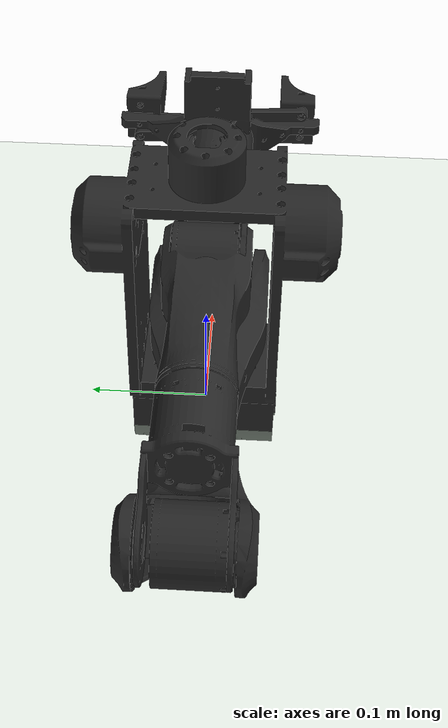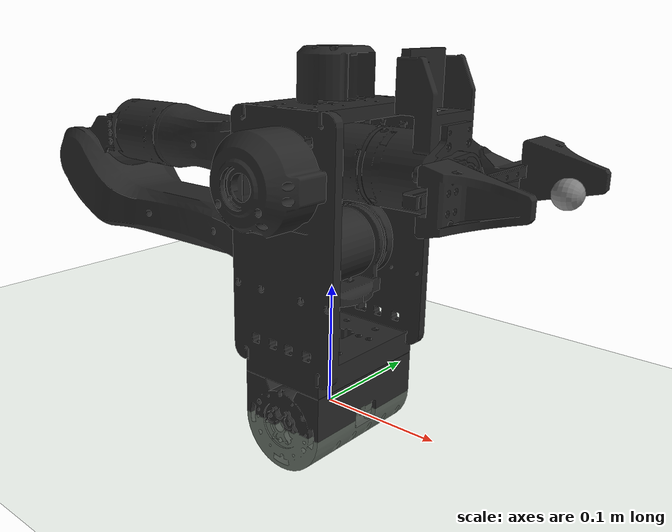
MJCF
<?xml version="1.0" encoding="utf-8"?>
<mujoco model="alicia_m_v1_2_follower">
  <compiler angle="radian" meshdir="../../meshes/Alicia_M_v1_2/follower/"/>
  <asset>
    <mesh name="base_link" file="base_link.STL" content_type="model/stl"/>
    <mesh name="link1" file="Link1.STL" content_type="model/stl"/>
    <mesh name="link2" file="Link2.STL" content_type="model/stl"/>
    <mesh name="link3" file="Link3.STL" content_type="model/stl"/>
    <mesh name="link4" file="Link4.STL" content_type="model/stl"/>
    <mesh name="link5" file="Link5.STL" content_type="model/stl"/>
    <mesh name="link6" file="Link6.STL" content_type="model/stl"/>
    <mesh name="grasp_base" file="grasp_base.STL"/>
    <mesh name="link7" file="Link7.STL" content_type="model/stl"/>
    <mesh name="link8" file="Link8.STL" content_type="model/stl"/>
    <texture builtin="gradient" height="100" rgb1=".4 .5 .6" rgb2="0 0 0" type="skybox" width="100"/>
    <texture builtin="checker" height="100" name="texplane" rgb1="1 1 1" rgb2=".8 .9 1" type="2d" width="100"/>
    <material name="MatPlane" reflectance="0.5" texrepeat="1 1" texture="texplane" texuniform="true"/>
    <material name="white" rgba="1 1 1 1" shininess="0.5" specular="0.1"/>
    <material name="black" rgba="0.15 0.15 0.15 1" shininess="0.2" specular="0.05"/>
    <material name="invisible" rgba="1 1 1 0" shininess="0" specular="0"/>
  </asset>
  <worldbody>
    <geom conaffinity="1" condim="3" contype="1" friction="1 .1 .1" group="2" material="MatPlane" name="floor" pos="0 0 0" rgba="0.8 0.9 0.8 1" size="10 10 0.125" type="plane" />
    <light castshadow="false" cutoff="100" diffuse="1 1 1" dir="-0 0 -1.3" directional="true" exponent="1" pos="0 0 1.3" specular=".1 .1 .1" />
    <body name="base_link" pos="0 0 0">
      <inertial pos="-0.0103334 -0.00398385 0.0143583" mass="1.75528" diaginertia="0.00234861 0.00240394 0.00318616" quat="1 0 0 0"/>
      <geom type="mesh" contype="0" conaffinity="0" group="1" density="0" rgba="0.15 0.15 0.15 1" mesh="base_link"/>
      <geom type="mesh" rgba="0.15 0.15 0.15 1" mesh="base_link"/>
      <body name="link1" pos="0 -0.0039812 0.09125" quat="0.707105 0 0 0.707108">
        <inertial pos="-0.00128221 -0.000784868 0.0320391" quat="0.712184 0.701961 -0.000872456 -0.00668323" mass="0.2378" diaginertia="0.000106558 9.72453e-05 8.49999e-05"/>
        <joint name="joint1" pos="0 0 0" axis="0 0 1" range="-2.7475 2.7475" actuatorfrcrange="-5 5"/>
        <geom type="mesh" contype="0" conaffinity="0" group="1" density="0" rgba="0.15 0.15 0.15 1" mesh="link1"/>
        <geom type="mesh" rgba="0.15 0.15 0.15 1" mesh="link1"/>
        <body name="link2" pos="0.0039812 0 0.0425" quat="0.499998 0.5 -0.500002 -0.5">
          <inertial pos="-0.14911 0.00587855 0.00511128" quat="0.477948 0.480648 0.518387 0.521362" mass="0.579389" diaginertia="0.00253574 0.00247149 0.000376397"/>
          <joint name="joint2" pos="0 0 0" axis="0 0 1" range="-3.14 0" actuatorfrcrange="-5 5"/>
          <geom type="mesh" contype="0" conaffinity="0" group="1" density="0" rgba="0.15 0.15 0.15 1" mesh="link2"/>
          <geom type="mesh" rgba="0.15 0.15 0.15 1" mesh="link2"/>
          <body name="link3" pos="-0.28184 0.040424 0">
            <inertial pos="0.0471353 0.0202037 0.00423215" quat="0.702926 0.703779 0.0739703 0.0715432" mass="0.523091" diaginertia="0.000216794 0.000191605 0.000168805"/>
            <joint name="joint3" pos="0 0 0" axis="0 0 -1" range="-3.14 0" actuatorfrcrange="-5 5"/>
            <geom type="mesh" contype="0" conaffinity="0" group="1" density="0" rgba="0.15 0.15 0.15 1" mesh="link3"/>
            <geom type="mesh" rgba="0.15 0.15 0.15 1" mesh="link3"/>
            <body name="link4" pos="0.10092 0.028546 0.0036562" quat="0.499998 -0.5 0.500002 -0.5">
              <inertial pos="-5.27169e-05 0.000828604 0.101644" quat="0.706037 0.000132028 -0.00165703 0.708173" mass="0.558638" diaginertia="0.00032658 0.000282553 0.000156849"/>
              <joint name="joint4" pos="0 0 0" axis="0 0 1" range="-2.79 2.79" actuatorfrcrange="-5 5"/>
              <geom type="mesh" contype="0" conaffinity="0" group="1" density="0" rgba="0.15 0.15 0.15 1" mesh="link4"/>
              <geom type="mesh" rgba="0.15 0.15 0.15 1" mesh="link4"/>
              <body name="link5" pos="0 0.0036562 0.1365" quat="0.707105 0.707108 0 0">
                <inertial pos="-0.000158068 0.0618238 0.0049317" quat="0.502591 0.494654 0.502495 0.500218" mass="0.345531" diaginertia="0.000134785 0.000109642 0.000104587"/>
                <joint name="joint5" pos="0 0 0" axis="0 0 1" range="-1.57 1.57" actuatorfrcrange="-5 5"/>
                <geom type="mesh" contype="0" conaffinity="0" group="1" density="0" rgba="0.15 0.15 0.15 1" mesh="link5"/>
                <geom type="mesh" rgba="0.15 0.15 0.15 1" mesh="link5"/>
                <body name="link6" pos="0 0.091 0.0036563" quat="0.707105 -0.707108 0 0">
                  <inertial pos="-0.00668574 -0.020175 0.0206229" quat="0.377221 0.856444 -0.296113 0.191114" mass="0.482508" diaginertia="0.0117028 0.0116863 0.000181084"/>
                  <joint name="joint6" pos="0 0 0" axis="0 0 1" range="-2.791 2.791" actuatorfrcrange="-5 5"/>
                  <geom type="mesh" contype="0" conaffinity="0" group="1" density="0" rgba="0.15 0.15 0.15 1" mesh="link6"/>
                  <geom type="mesh" rgba="0.15 0.15 0.15 1" mesh="link6"/>
                  <geom pos="0.0852198 0.00365622 0.705183" quat="1 0 0 0" type="mesh" contype="0" conaffinity="0" group="1" density="0" rgba="0.15 0.15 0.15 1" mesh="grasp_base"/>
                  <geom pos="0.0852198 0.00365622 0.705183" quat="1 0 0 0" type="mesh" rgba="0.15 0.15 0.15 1" mesh="grasp_base"/>
                  <body name="link7" pos="0 -0.050001 0.1415" quat="0.5 -0.5 -0.5 -0.5">
                    <inertial pos="-0.0424955 -1.66322e-08 -0.0107125" quat="-6.26683e-06 0.820194 1.97623e-06 0.572085" mass="0.0243852" diaginertia="8.61232e-06 6.51611e-06 4.63423e-06"/>
                    <joint name="left_finger" pos="0 0 0" axis="0 0 -1" type="slide" range="-0.05 0" actuatorfrcrange="-5 5"/>
                    <geom type="mesh" contype="0" conaffinity="0" group="1" density="0" rgba="0.15 0.15 0.15 1" mesh="link7"/>
                    <geom type="mesh" rgba="0.15 0.15 0.15 1" mesh="link7"/>
                  </body>
                  <body name="link8" pos="0 0.049999 0.1415" quat="0.5 0.5 0.5 -0.5">
                    <inertial pos="0.0424955 1.66323e-08 -0.0107125" quat="-1.97623e-06 0.572085 6.26683e-06 0.820194" mass="0.0243852" diaginertia="8.61232e-06 6.51611e-06 4.63423e-06"/>
                    <joint name="right_finger" pos="0 0 0" axis="0 0 1" type="slide" range="0 0.05" actuatorfrcrange="-5 5"/>
                    <geom type="mesh" contype="0" conaffinity="0" group="1" density="0" rgba="0.15 0.15 0.15 1" mesh="link8"/>
                    <geom type="mesh" rgba="0.15 0.15 0.15 1" mesh="link8"/>
                  </body>
                  <body name="tool0" pos="0 0 0.1375">
                    <inertial pos="0 0 0" quat="1 0 0 0" mass="0.001" diaginertia="1e-08 1e-08 1e-08"/>
                    <geom type="sphere" size="0.001" contype="0" conaffinity="0" group="1" density="0" rgba="0 1 0 1"/>
                    <site name="tool0_site" pos="0 0 0" size="0.01" type="sphere"/>
                  </body>
                </body>
              </body>
            </body>
          </body>
        </body>
      </body>
    </body>
  </worldbody>
  <contact>
    <exclude body1="base_link" body2="link1"/>
    <exclude body1="link1" body2="link2"/>
    <exclude body1="link2" body2="link3"/>
    <exclude body1="link3" body2="link4"/>
    <exclude body1="link2" body2="link4"/>
    <exclude body1="link4" body2="link5"/>
    <exclude body1="link5" body2="link6"/>
    <exclude body1="link6" body2="link7"/>
    <exclude body1="link6" body2="link8"/>
    <exclude body1="link7" body2="link8"/>
  </contact>
</mujoco>
